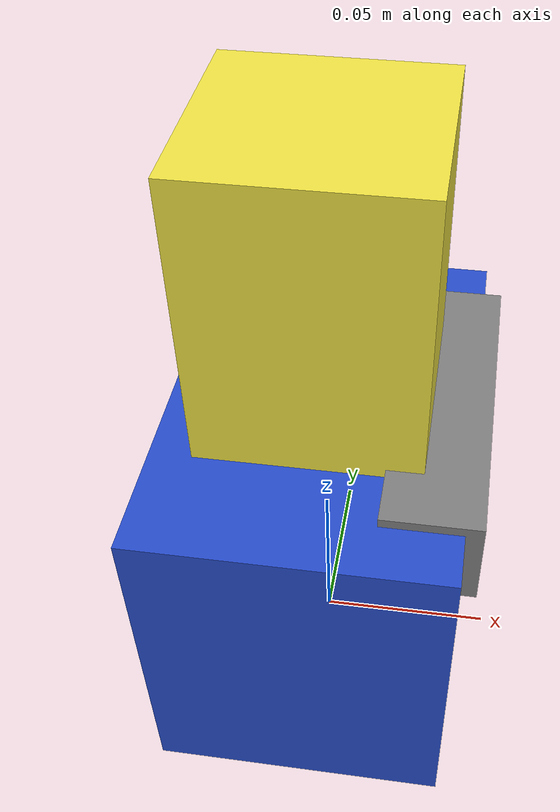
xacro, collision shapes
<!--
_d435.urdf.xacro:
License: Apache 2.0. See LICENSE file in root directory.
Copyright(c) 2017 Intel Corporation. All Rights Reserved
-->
<?xml version="1.0"?>
<robot name="flyingcar" xmlns:xacro="https://www.ros.org/wiki/xacro" >
  <xacro:include filename="$(find flyingcar_description)/urdf/flyingcar.urdf.xacro" />
  <xacro:include filename="$(find flyingcar_description)/urdf/flyingcar.materials.xacro"/>

  <xacro:flyingcar parent="base_link"/>

  <link name="base_link"/><!--bottom of sensor pack-->

</robot>

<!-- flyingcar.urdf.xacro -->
<robot xmlns:xacro="https://www.ros.org/wiki/xacro" >
  <xacro:include filename="$(find flyingcar_description)/urdf/flyingcar.gazebo.xacro"/>
  <xacro:include filename="$(find flyingcar_description)/urdf/sensors/hokuyo_utm30lx.urdf.xacro" />
  <xacro:include filename="$(find flyingcar_description)/urdf/sensors/_d435.urdf.xacro" />
  <xacro:property name="M_PI" value="3.14159"/>
  <xacro:macro name="flyingcar" params="parent">

    <!--visual body of sensor-->
    <joint name="pack_link_joint" type="fixed">
      <origin xyz="0 0 0.04675" rpy="0 0 0"/>
      <parent link="${parent}"/>
      <child link="pack_link" />
    </joint>
    <link name="pack_link">
      <inertial>
        <mass value="0.5"/>
        <origin rpy="0 0 0" xyz="0 0 0"/>
        <inertia ixx="0.01" ixy="0" ixz="0" iyy="0.01" iyz="0" izz="0.01"/>
      </inertial>
      <collision name="collision_base_link">
        <geometry>
          <box size="0.08 0.12 0.0935"/>
        </geometry>
      </collision>
      <visual>
        <origin rpy="0 0 0" xyz="0 0 0"/>
        <geometry>
          <box size="0.08 0.12 0.0935"/>
        </geometry>
        <material name="blue"/>
      </visual>
    </link>

    <!-- Sparkfun imu-->
    <joint name="imu_joint" type="fixed">
      <axis xyz="0 0 0"/>
      <origin xyz="0 0 0.078" rpy="0 3.1416 3.1416"/>
      <parent link="${parent}"/>
      <child link="base_imu_link"/>
    </joint>
    <link name="base_imu_link">
      <inertial>
        <mass value="0.001"/>
        <origin rpy="0 0 0" xyz="0 0 0"/>
        <inertia ixx="0.0001" ixy="0" ixz="0" iyy="0.000001" iyz="0" izz="0.0001"/>
      </inertial>
    </link>

    <!-- csi camera -->
    <joint name="csi_camera_joint" type="fixed">
      <axis xyz="0 0 0"/>
      <origin xyz="0 0 0.043" rpy="0 0 0"/>
      <parent link="${parent}"/>
      <child link="csi_camera_link"/>
    </joint>
    <link name="csi_camera_link"/>

    <!-- Hokuyo utm30lx-->
    <xacro:hokuyo_utm30lx name="hokuyo" parent="${parent}">
      <origin xyz="0 0 0.1275" rpy="0 0 0"/> <!--real measure from blue extend version-->
    </xacro:hokuyo_utm30lx>

    <!-- Intel realsense-->
    <xacro:sensor_d435 parent="${parent}">
      <origin xyz="0.032 0 0.071" rpy="0 0 0"/> <!--real measure from blue extend version-->
    </xacro:sensor_d435>

  </xacro:macro>
</robot>

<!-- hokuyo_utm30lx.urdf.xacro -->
<robot xmlns:xacro="http://ros.org/wiki/xacro">
  <xacro:include filename="$(find flyingcar_description)/urdf/sensors/hokuyo_utm30lx.gazebo.xacro" />
  <xacro:macro name="hokuyo_utm30lx" params="name parent *origin">

    <joint name="${name}_joint" type="fixed">
      <!--origin xyz="0.105 0.000 0.229" rpy="0 0 0" /-->
      <xacro:insert_block name="origin" />
      <parent link="${parent}"/>
      <child link="${name}_link"/>
    </joint>

    <link name="${name}_link">
      <visual>
        <origin xyz="0 0 0" rpy="0 0 0" />
        <geometry>
        <mesh filename="package://flyingcar_description/meshes/hokuyo_utm30lx/hokuyo_utm_30lx.dae"/>
      </geometry>
      </visual>
      <collision>
        <origin xyz="0 0 0" rpy="0 0 0" />
        <geometry>
        <box size="0.058 0.058 0.087" />
      </geometry>
      </collision>
    </link>

    <!-- extensions -->
    <xacro:hokuyo_utm30lx_gazebo name="${name}" ros_topic="/scan" update_rate="40" ray_count="720" min_angle="${-M_PI}" max_angle="${M_PI}"/>
  </xacro:macro>

</robot>

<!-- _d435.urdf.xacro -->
<robot xmlns:xacro="http://ros.org/wiki/xacro">
  <xacro:include filename="$(find flyingcar_description)/urdf/sensors/_d435.gazebo.xacro"/>
  <xacro:macro name="sensor_d435" params="parent *origin">
    <xacro:property name="M_PI" value="3.1415926535897931" />

    <!-- The following values are approximate, and the camera node
     publishing TF values with actual calibrated camera extrinsic values -->
    <xacro:property name="d435_cam_depth_to_left_ir_offset" value="0.0"/>
    <xacro:property name="d435_cam_depth_to_right_ir_offset" value="-0.050"/>
    <xacro:property name="d435_cam_depth_to_color_offset" value="0.015"/>

    <!-- The following values model the aluminum peripherial case for the
  	D435 camera, with the camera joint represented by the actual
  	peripherial camera tripod mount -->
    <xacro:property name="d435_cam_width" value="0.090"/>
    <xacro:property name="d435_cam_height" value="0.025"/>
    <xacro:property name="d435_cam_depth" value="0.02505"/>
    <xacro:property name="d435_cam_mount_from_center_offset" value="0.0149"/>

    <!-- The following offset is relative the the physical D435 camera peripherial
  	camera tripod mount -->
    <xacro:property name="d435_cam_depth_px" value="${d435_cam_mount_from_center_offset}"/>
    <xacro:property name="d435_cam_depth_py" value="0.0175"/>
    <xacro:property name="d435_cam_depth_pz" value="${d435_cam_height/2}"/>

    <material name="aluminum">
	  <color rgba="0.5 0.5 0.5 1"/>
    </material>

    <!-- camera body, with origin at bottom screw mount -->
    <joint name="camera_joint" type="fixed">
      <xacro:insert_block name="origin" />
      <parent link="${parent}"/>
      <child link="camera_link" />
    </joint>

    <link name="camera_link">
      <visual>
      <origin xyz="${d435_cam_mount_from_center_offset} 0.0 ${d435_cam_height/2}" rpy="${M_PI/2} 0 ${M_PI/2}"/>
        <geometry>
	  <mesh filename="package://flyingcar_description/meshes/intel_realsense_d435/d435.dae" />

        </geometry>
        <material name="aluminum"/>
      </visual>
      <collision>
        <origin xyz="0.0 0.0 ${d435_cam_height/2}" rpy="0 0 0"/>
        <geometry>
        <box size="${d435_cam_depth} ${d435_cam_width} ${d435_cam_height}"/>
        </geometry>
      </collision>
      <inertial>
        <!-- The following are not reliable values, and should not be used for modeling -->
        <mass value="0.564" />
        <origin xyz="0 0 0" />
        <inertia ixx="0.003881243" ixy="0.0" ixz="0.0" iyy="0.000498940" iyz="0.0" izz="0.003879257" />
      </inertial>
    </link>

    <!-- camera depth joints and links -->
    <joint name="camera_depth_joint" type="fixed">
      <origin xyz="${d435_cam_depth_px} ${d435_cam_depth_py} ${d435_cam_depth_pz}" rpy="0 0 0"/>
      <parent link="camera_link"/>
      <child link="camera_depth_frame" />
    </joint>
    <link name="camera_depth_frame"/>

    <joint name="camera_depth_optical_joint" type="fixed">
      <origin xyz="0 0 0" rpy="${-M_PI/2} 0 ${-M_PI/2}" />
      <parent link="camera_depth_frame" />
      <child link="camera_depth_optical_frame" />
    </joint>
    <link name="camera_depth_optical_frame"/>

    <!-- camera left IR joints and links -->
    <joint name="camera_left_ir_joint" type="fixed">
      <origin xyz="0 ${d435_cam_depth_to_left_ir_offset} 0" rpy="0 0 0" />
      <parent link="camera_depth_frame" />
      <child link="camera_left_ir_frame" />
    </joint>
    <link name="camera_left_ir_frame"/>

    <joint name="camera_left_ir_optical_joint" type="fixed">
      <origin xyz="0 0 0" rpy="${-M_PI/2} 0 ${-M_PI/2}" />
      <parent link="camera_left_ir_frame" />
      <child link="camera_left_ir_optical_frame" />
    </joint>
    <link name="camera_left_ir_optical_frame"/>

    <!-- camera right IR joints and links -->
    <joint name="camera_right_ir_joint" type="fixed">
      <origin xyz="0 ${d435_cam_depth_to_right_ir_offset} 0" rpy="0 0 0" />
      <parent link="camera_depth_frame" />
      <child link="camera_right_ir_frame" />
    </joint>
    <link name="camera_right_ir_frame"/>

    <joint name="camera_right_ir_optical_joint" type="fixed">
      <origin xyz="0 0 0" rpy="${-M_PI/2} 0 ${-M_PI/2}" />
      <parent link="camera_right_ir_frame" />
      <child link="camera_right_ir_optical_frame" />
    </joint>
    <link name="camera_right_ir_optical_frame"/>

    <!-- camera color joints and links -->
    <joint name="camera_color_joint" type="fixed">
      <origin xyz="0 ${d435_cam_depth_to_color_offset} 0" rpy="0 0 0" />
      <parent link="camera_depth_frame" />
      <child link="camera_color_frame" />
    </joint>
    <link name="camera_color_frame"/>

    <joint name="camera_color_optical_joint" type="fixed">
      <origin xyz="0 0 0" rpy="${-M_PI/2} 0 ${-M_PI/2}" />
      <parent link="camera_color_frame" />
      <child link="camera_color_optical_frame" />
    </joint>
    <link name="camera_color_optical_frame"/>

    <!-- extensions -->
    <xacro:_d435_gazebo name="camera"/>
  </xacro:macro>
</robot>
